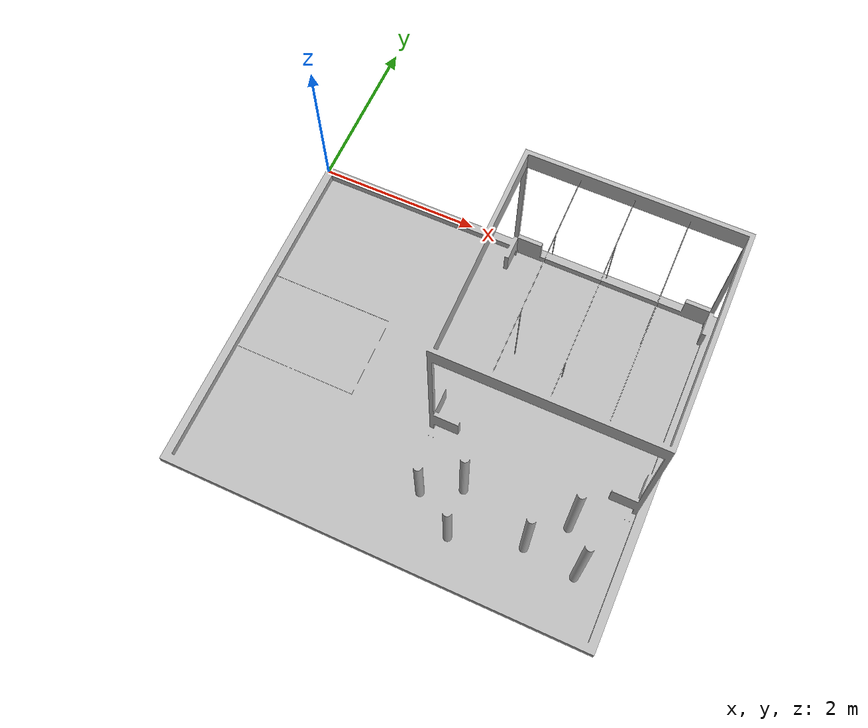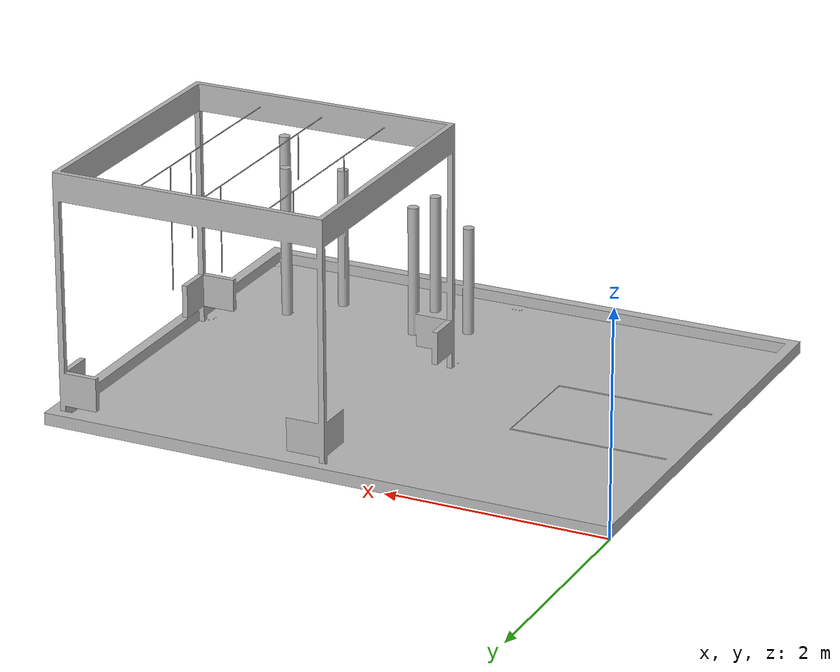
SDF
<?xml version="1.0"?>
<sdf version="1.5">
  <model name="challenge 1">
    <static>true</static>
    <link name="body">
      <collision name="collision">
        <pose>0 0 0 0 0 0</pose>
        <geometry>
          <mesh>
            <uri>model://challenge_1/meshes/challenge_1.dae</uri>
          </mesh>
        </geometry>
      </collision>
      <visual name="visual">
        <pose>0 0 0 0 0 0</pose>
        <geometry>
          <mesh>
            <uri>model://challenge_1/meshes/challenge_1.dae</uri>
          </mesh>
        </geometry>
      </visual>
    </link>
  </model>
</sdf>
